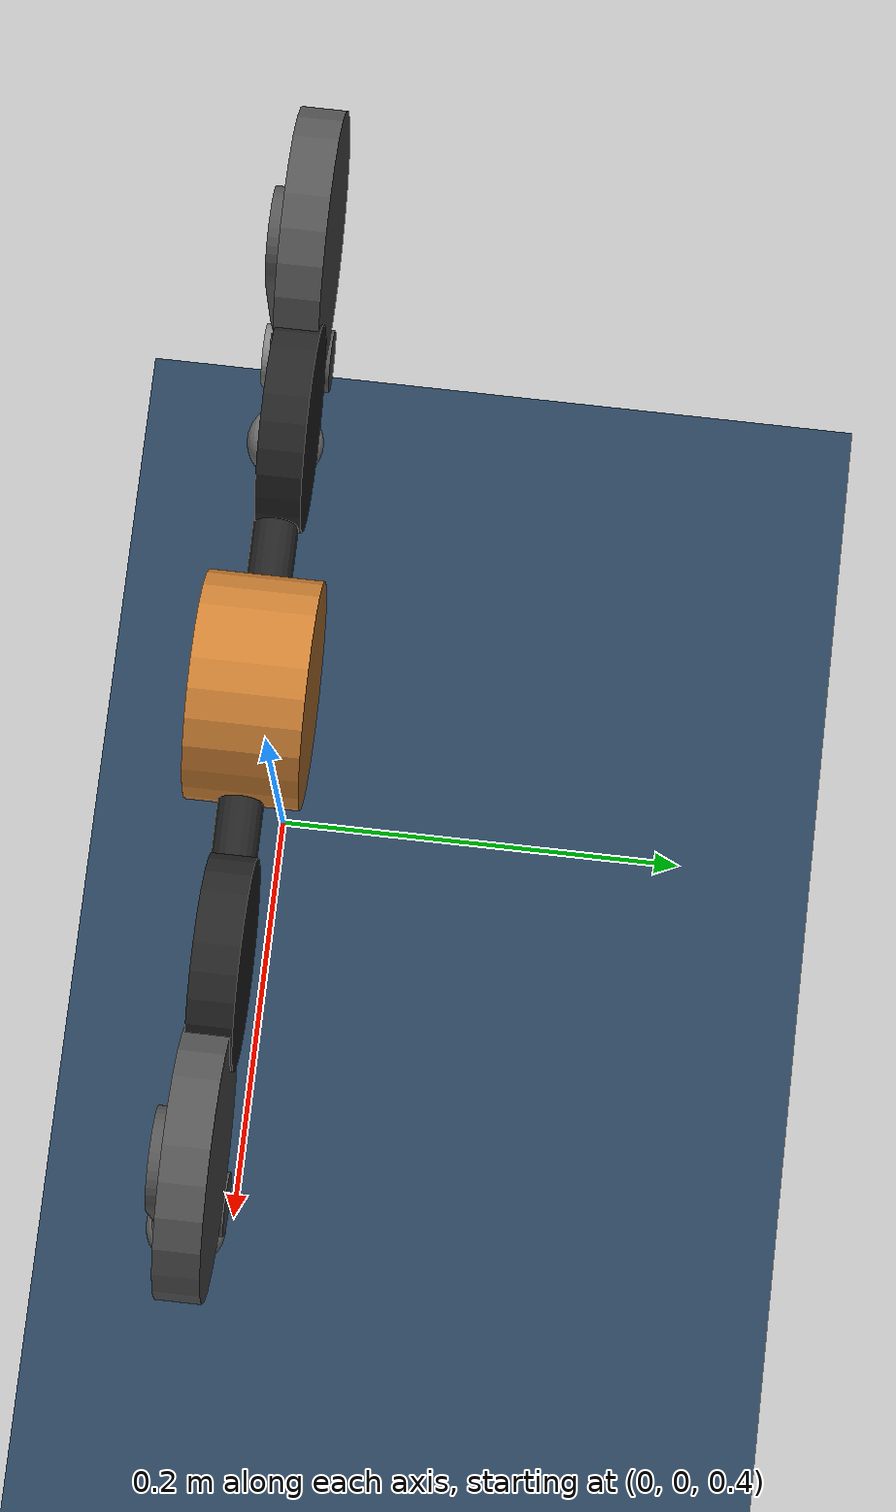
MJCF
<mujoco model="HAL">
    <compiler angle="radian" coordinate="local" inertiafromgeom="true" settotalmass="5"/>

    <default>
        <joint armature=".1" damping=".01" limited="true" solimplimit="0 .8 .03" solreflimit=".02 1" stiffness="8"/>
        <geom conaffinity="0" condim="3" contype="1" friction=".4 .1 .1" solimp="0.0 0.8 0.01" solref="0.02 1"/>
        <motor ctrllimited="true" ctrlrange="-1 1"/>
    </default>

    <size nstack="300000" nuser_geom="1"/>
    <option gravity="0 0 -9.81" timestep="0.01">
        <flag eulerdamp="disable"/>
    </option>

    <asset>
        <mesh name="thigh_mesh" file="meshes/thigh.stl" scale="0.001 0.001 0.001"/>
        <mesh name="shin_mesh" file="meshes/shin.stl" scale="0.001 0.001 0.001"/>

        <texture type="skybox" builtin="gradient" rgb1=".3 .5 .7" rgb2="0 0 0" width="32" height="512"/>

        <texture name="body" type="cube" builtin="flat" mark="cross" width="128" height="128" rgb1="0.8 0.6 0.4" rgb2="0.8 0.6 0.4" markrgb="1 1 1" random="0.01"/>
        <material name="body" texture="body" texuniform="true" rgba="0.8 0.6 .4 1"/>

        <texture name="grid" type="2d" builtin="checker" width="512" height="512" rgb1=".1 .2 .3" rgb2=".2 .3 .4" mark="edge" markrgb=".8 .8 .8"/>
        <material name="grid" texture="grid" texrepeat="5 5" texuniform="true" reflectance="0.2"/>
    </asset>

    <worldbody>
        <light pos="0 0 1.5" dir="0 0 -1" directional="true"/>

        <light name="spotlight" mode="targetbodycom" target="torso" diffuse=".8 .8 .8" specular="0.3 0.3 0.3" pos="0 -6 4" cutoff="30"/>
        <geom name="floor" conaffinity="1" condim="3" material="grid" pos="0 0 0" size="10 10 10" type="plane"/>

        <body name="torso" pos="0 0 .7">
            <camera name="track" mode="trackcom" pos="0 -2 0.1" xyaxes="1 0 0 0 0 1"/>
            <joint armature="0" axis="1 0 0" damping="0" limited="false" name="rootx" pos="0 0 0" stiffness="0" type="slide"/>
            <joint armature="0" axis="0 0 1" damping="0" limited="false" name="rootz" pos="0 0 0" stiffness="0" type="slide"/>
            <joint armature="0" axis="0 1 0" damping="0" limited="false" name="rooty" pos="0 0 0" stiffness="0" type="hinge"/>
            <geom quat="0 0 0.7071068 0.7071068" type="cylinder" name="front_torso_center_geom" size="0.05 0.025" pos="0 0 0"  rgba="0.8 0.5 0.2 1"/>

            <body name="front_torso" pos="0 0 0">
                <joint name="spine_joint" damping="0.1" type="hinge" axis="0 1 0" pos="0 0 0" range="-2 2" stiffness="4"/>
                <geom fromto="0 0 0 .195586 0 0" rgba="0.141 0.141 0.141 1" name="front_torso_geom" size="0.01" type="capsule"/>
                <geom quat="0 0 0.7071068 0.7071068" rgba="0.141 0.141 0.141 1" type="cylinder" size="0.046 0.01" pos="0.119488 0.001 0" friction="1.0 .1 .1"/>

                <body name="fthigh" pos=".195586 0 0">
                    <joint axis="0 1 0" damping="0.1" name="fthigh_joint" pos="0 0 0" range="-3 3" stiffness="1" type="hinge"/>
                    <geom quat="0 0 0.7071068 0.7071068" rgba="0.329 0.329 0.329 1" name="fthigh_pully_geom" type="cylinder" size="0.0585 0.01" pos="0.01 0 0"/>
                    <geom quat="0 0 0.7071068 0.7071068" rgba="0.329 0.329 0.329 1" name="fthigh_geom" pos="0.01 -0.02 0" type="mesh" mesh="thigh_mesh" friction="1.0 .1 .1"/>

                    <body name="fshin" pos="0.01 -0.02 -0.175026">
                        <joint axis="0 1 0" damping="0.1" name="fshin_joint" pos="0 0 0" range="-2.8 2.8" stiffness="1" type="hinge"/>
                        <geom quat="0 0 0.7071068 0.7071068" name="fshin_geom" pos="0 0 0.175026" rgba="0.51 0.51 0.51 1" type="mesh" mesh="shin_mesh" friction="2.5 .1 .1"/>
                    </body>

                </body>
            </body>

            <body name="back_torso" pos="0 0 0">
                <geom fromto="-.195586 0 0 0 0 0" rgba="0.141 0.141 0.141 1" name="back_torso_geom" size="0.01" type="capsule"/>
                <geom quat="0 0 0.7071068 0.7071068" rgba="0.141 0.141 0.141 1" type="cylinder" size="0.046 0.01" pos="-0.119488 0.001 0"/>

                <body name="bthigh" pos="-.195586 0 0">
                    <joint axis="0 1 0" damping="0.1" name="bthigh_joint" pos="0 0 0" range="-3 3" stiffness="1" type="hinge"/>
                    <geom quat="0 0 0.7071068 0.7071068" rgba="0.329 0.329 0.329 1" name="bthigh_pully_geom" type="cylinder" size="0.0585 0.01" pos="-0.01 0 0" />
                    <geom quat="0 0 0.7071068 0.7071068" rgba="0.329 0.329 0.329 1" name="bthigh_geom" pos="-0.01 -0.02 0" type="mesh" mesh="thigh_mesh" friction="1.0 .1 .1"/>

                    <body name="bshin" pos="-0.01 -0.02 -0.175026">
                        <joint axis="0 1 0" damping="0.1" name="bshin_joint" pos="0 0 0" range="-2.8 2.8" stiffness="1" type="hinge"/>
                        <geom quat="0 0 0.7071068 0.7071068" name="bshin_geom" pos="0 0 0.175026" rgba="0.51 0.51 0.51 1" type="mesh" mesh="shin_mesh" friction="2.5 .1 .1"/>
                    </body>

                </body>
            </body>

        </body>
    </worldbody>

    <actuator>
        <motor gear="20" joint="spine_joint" name="spine"/> <!-- Reduced from 100 -->
        <motor gear="25" joint="bthigh_joint" name="bthigh"/> <!-- Reduced from 120 -->
        <motor gear="30" joint="bshin_joint" name="bshin"/> <!-- Reduced from 90 -->
        <motor gear="25" joint="fthigh_joint" name="fthigh"/> <!-- Kept the same for demonstration, adjust as needed -->
        <motor gear="30" joint="fshin_joint" name="fshin"/> <!-- Reduced from 60 -->
    </actuator>

  <keyframe>
    <key name="home" qpos="0 -0.42 0 0 0.51 -1.37 0.51 -1.37" ctrl="0 0 0 0 0"/>  <!-- resets the model to the home position -->
  </keyframe>

</mujoco>
